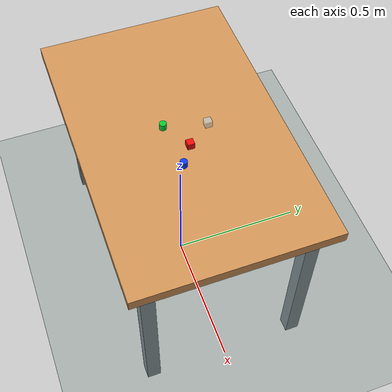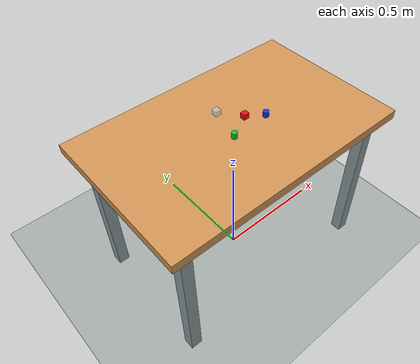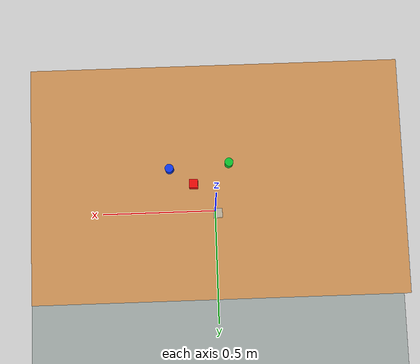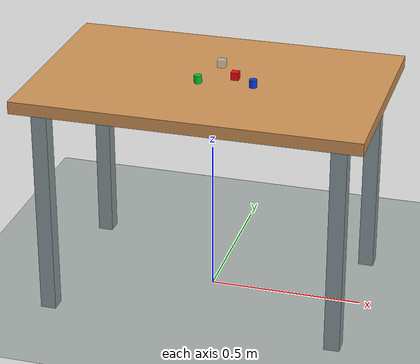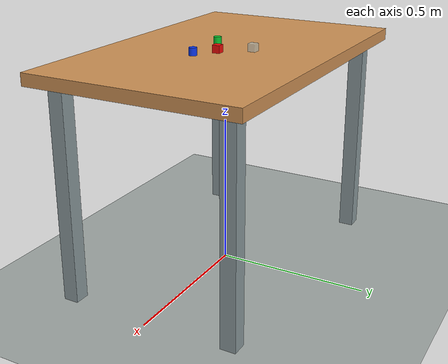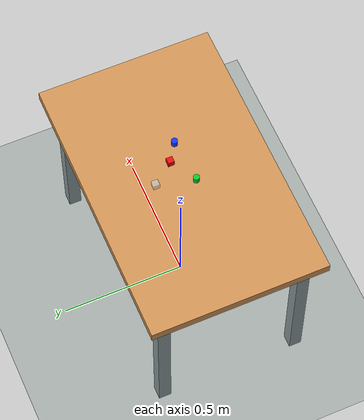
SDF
<?xml version="1.0"?>
<sdf version="1.9">
  <world name="ghost_mgg_m2_tuning">
    <plugin
      filename="gz-sim-physics-system"
      name="gz::sim::systems::Physics">
    </plugin>
    <plugin
      filename="gz-sim-sensors-system"
      name="gz::sim::systems::Sensors">
      <render_engine>ogre2</render_engine>
    </plugin>
    <plugin
      filename="gz-sim-user-commands-system"
      name="gz::sim::systems::UserCommands">
    </plugin>
    <plugin
      filename="gz-sim-scene-broadcaster-system"
      name="gz::sim::systems::SceneBroadcaster">
    </plugin>

    <scene>
      <ambient>0.55 0.58 0.62 1</ambient>
      <background>0.78 0.84 0.90 1</background>
      <shadows>false</shadows>
    </scene>

    <light name="key_light" type="directional">
      <pose>-1.5 -2.0 4.0 0 0 0</pose>
      <cast_shadows>false</cast_shadows>
      <diffuse>0.95 0.92 0.86 1</diffuse>
      <specular>0.35 0.35 0.35 1</specular>
      <direction>-0.55 0.18 -1.0</direction>
    </light>

    <model name="ground_plane">
      <static>true</static>
      <link name="ground_link">
        <collision name="ground_collision">
          <geometry>
            <plane>
              <normal>0 0 1</normal>
              <size>5 5</size>
            </plane>
          </geometry>
        </collision>
        <visual name="ground_visual">
          <geometry>
            <plane>
              <normal>0 0 1</normal>
              <size>5 5</size>
            </plane>
          </geometry>
          <material>
            <ambient>0.50 0.53 0.52 1</ambient>
            <diffuse>0.64 0.67 0.66 1</diffuse>
          </material>
        </visual>
      </link>
    </model>

    <include>
      <name>table</name>
      <uri>model://table</uri>
      <pose>0 0 0 0 0 0</pose>
    </include>

    <include>
      <name>red_cube</name>
      <uri>model://red_cube</uri>
      <pose>0.070172 0.012156 0.752500 0 0 0</pose>
    </include>

    <include>
      <name>blue_cylinder</name>
      <uri>model://blue_cylinder</uri>
      <pose>0.139726 -0.034920 0.752500 0 0 0</pose>
    </include>

    <include>
      <name>green_cylinder</name>
      <uri>model://green_cylinder</uri>
      <pose>-0.035000 -0.047344 0.752500 0 0 0</pose>
    </include>

    <include>
      <name>glass_block</name>
      <uri>model://glass_block</uri>
      <pose>0.002000 0.100000 0.752500 0 0 0</pose>
    </include>
  </world>
</sdf>

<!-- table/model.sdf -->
<sdf version="1.9">
  <model name="table">
    <static>true</static>

    <link name="table_link">
      <visual name="top_visual">
        <pose>0 0 0.72 0 0 0</pose>
        <geometry>
          <box>
            <size>1.10 0.70 0.04</size>
          </box>
        </geometry>
        <material>
          <ambient>0.70 0.48 0.28 1</ambient>
          <diffuse>0.82 0.58 0.34 1</diffuse>
          <specular>0.15 0.12 0.08 1</specular>
        </material>
      </visual>
      <collision name="top_collision">
        <pose>0 0 0.72 0 0 0</pose>
        <geometry>
          <box>
            <size>1.10 0.70 0.04</size>
          </box>
        </geometry>
        <surface>
          <friction>
            <ode>
              <mu>1.2</mu>
              <mu2>1.2</mu2>
            </ode>
          </friction>
          <contact>
            <ode>
              <kp>1000000.0</kp>
              <kd>10.0</kd>
            </ode>
          </contact>
        </surface>
      </collision>

      <visual name="leg_front_left_visual">
        <pose>0.47 0.28 0.35 0 0 0</pose>
        <geometry>
          <box>
            <size>0.05 0.05 0.70</size>
          </box>
        </geometry>
        <material>
          <ambient>0.44 0.49 0.50 1</ambient>
          <diffuse>0.55 0.61 0.62 1</diffuse>
          <specular>0.25 0.25 0.25 1</specular>
        </material>
      </visual>
      <collision name="leg_front_left_collision">
        <pose>0.47 0.28 0.35 0 0 0</pose>
        <geometry>
          <box>
            <size>0.05 0.05 0.70</size>
          </box>
        </geometry>
      </collision>

      <visual name="leg_front_right_visual">
        <pose>0.47 -0.28 0.35 0 0 0</pose>
        <geometry>
          <box>
            <size>0.05 0.05 0.70</size>
          </box>
        </geometry>
        <material>
          <ambient>0.44 0.49 0.50 1</ambient>
          <diffuse>0.55 0.61 0.62 1</diffuse>
          <specular>0.25 0.25 0.25 1</specular>
        </material>
      </visual>
      <collision name="leg_front_right_collision">
        <pose>0.47 -0.28 0.35 0 0 0</pose>
        <geometry>
          <box>
            <size>0.05 0.05 0.70</size>
          </box>
        </geometry>
      </collision>

      <visual name="leg_back_left_visual">
        <pose>-0.47 0.28 0.35 0 0 0</pose>
        <geometry>
          <box>
            <size>0.05 0.05 0.70</size>
          </box>
        </geometry>
        <material>
          <ambient>0.44 0.49 0.50 1</ambient>
          <diffuse>0.55 0.61 0.62 1</diffuse>
          <specular>0.25 0.25 0.25 1</specular>
        </material>
      </visual>
      <collision name="leg_back_left_collision">
        <pose>-0.47 0.28 0.35 0 0 0</pose>
        <geometry>
          <box>
            <size>0.05 0.05 0.70</size>
          </box>
        </geometry>
      </collision>

      <visual name="leg_back_right_visual">
        <pose>-0.47 -0.28 0.35 0 0 0</pose>
        <geometry>
          <box>
            <size>0.05 0.05 0.70</size>
          </box>
        </geometry>
        <material>
          <ambient>0.44 0.49 0.50 1</ambient>
          <diffuse>0.55 0.61 0.62 1</diffuse>
          <specular>0.25 0.25 0.25 1</specular>
        </material>
      </visual>
      <collision name="leg_back_right_collision">
        <pose>-0.47 -0.28 0.35 0 0 0</pose>
        <geometry>
          <box>
            <size>0.05 0.05 0.70</size>
          </box>
        </geometry>
      </collision>
    </link>
  </model>
</sdf>

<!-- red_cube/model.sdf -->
<sdf version="1.9">
  <model name="red_cube">
    <static>false</static>
    <link name="red_cube_link">
      <inertial>
        <mass>0.020</mass>
        <inertia>
          <ixx>0.0000021</ixx>
          <iyy>0.0000021</iyy>
          <izz>0.0000021</izz>
        </inertia>
      </inertial>
      <visual name="red_cube_visual">
        <geometry>
          <box>
            <size>0.025 0.025 0.025</size>
          </box>
        </geometry>
        <material>
          <ambient>0.95 0.04 0.03 1</ambient>
          <diffuse>0.95 0.04 0.03 1</diffuse>
          <specular>0.25 0.08 0.06 1</specular>
        </material>
      </visual>
      <collision name="red_cube_collision">
        <geometry>
          <box>
            <size>0.025 0.025 0.025</size>
          </box>
        </geometry>
        <surface>
          <friction>
            <ode>
              <mu>1.5</mu>
              <mu2>1.5</mu2>
            </ode>
          </friction>
          <contact>
            <ode>
              <kp>1000000.0</kp>
              <kd>10.0</kd>
            </ode>
          </contact>
        </surface>
      </collision>
    </link>
  </model>
</sdf>

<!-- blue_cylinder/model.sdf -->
<sdf version="1.9">
  <model name="blue_cylinder">
    <static>false</static>
    <link name="blue_cylinder_link">
      <inertial>
        <mass>0.020</mass>
        <inertia>
          <ixx>0.0000018</ixx>
          <iyy>0.0000018</iyy>
          <izz>0.0000016</izz>
        </inertia>
      </inertial>
      <visual name="blue_cylinder_visual">
        <geometry>
          <cylinder>
            <radius>0.0125</radius>
            <length>0.025</length>
          </cylinder>
        </geometry>
        <material>
          <ambient>0.05 0.22 0.95 1</ambient>
          <diffuse>0.05 0.22 0.95 1</diffuse>
          <specular>0.08 0.12 0.35 1</specular>
        </material>
      </visual>
      <collision name="blue_cylinder_collision">
        <geometry>
          <cylinder>
            <radius>0.0125</radius>
            <length>0.025</length>
          </cylinder>
        </geometry>
        <surface>
          <friction>
            <ode>
              <mu>1.5</mu>
              <mu2>1.5</mu2>
            </ode>
          </friction>
          <contact>
            <ode>
              <kp>1000000.0</kp>
              <kd>10.0</kd>
            </ode>
          </contact>
        </surface>
      </collision>
    </link>
  </model>
</sdf>

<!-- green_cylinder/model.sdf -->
<sdf version="1.9">
  <model name="green_cylinder">
    <static>false</static>
    <link name="green_cylinder_link">
      <inertial>
        <mass>0.020</mass>
        <inertia>
          <ixx>0.0000018</ixx>
          <iyy>0.0000018</iyy>
          <izz>0.0000016</izz>
        </inertia>
      </inertial>
      <visual name="green_cylinder_visual">
        <geometry>
          <cylinder>
            <radius>0.0125</radius>
            <length>0.025</length>
          </cylinder>
        </geometry>
        <material>
          <ambient>0.04 0.78 0.18 1</ambient>
          <diffuse>0.04 0.78 0.18 1</diffuse>
          <specular>0.06 0.25 0.08 1</specular>
        </material>
      </visual>
      <collision name="green_cylinder_collision">
        <geometry>
          <cylinder>
            <radius>0.0125</radius>
            <length>0.025</length>
          </cylinder>
        </geometry>
        <surface>
          <friction>
            <ode>
              <mu>1.5</mu>
              <mu2>1.5</mu2>
            </ode>
          </friction>
          <contact>
            <ode>
              <kp>1000000.0</kp>
              <kd>10.0</kd>
            </ode>
          </contact>
        </surface>
      </collision>
    </link>
  </model>
</sdf>

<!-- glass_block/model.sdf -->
<sdf version="1.9">
  <model name="glass_block">
    <static>false</static>
    <link name="glass_block_link">
      <inertial>
        <mass>0.020</mass>
        <inertia>
          <ixx>0.0000021</ixx>
          <iyy>0.0000021</iyy>
          <izz>0.0000021</izz>
        </inertia>
      </inertial>
      <visual name="glass_block_visual">
        <geometry>
          <box>
            <size>0.025 0.025 0.025</size>
          </box>
        </geometry>
        <material>
          <ambient>0.70 0.90 1.00 0.45</ambient>
          <diffuse>0.70 0.90 1.00 0.45</diffuse>
          <specular>0.95 0.95 1.00 1</specular>
        </material>
        <transparency>0.55</transparency>
      </visual>
      <collision name="glass_block_collision">
        <geometry>
          <box>
            <size>0.025 0.025 0.025</size>
          </box>
        </geometry>
        <surface>
          <friction>
            <ode>
              <mu>1.5</mu>
              <mu2>1.5</mu2>
            </ode>
          </friction>
          <contact>
            <ode>
              <kp>1000000.0</kp>
              <kd>10.0</kd>
            </ode>
          </contact>
        </surface>
      </collision>
    </link>
  </model>
</sdf>
